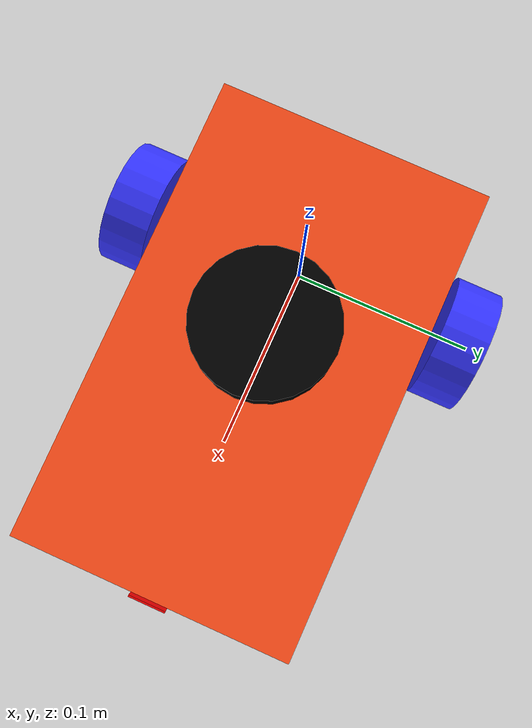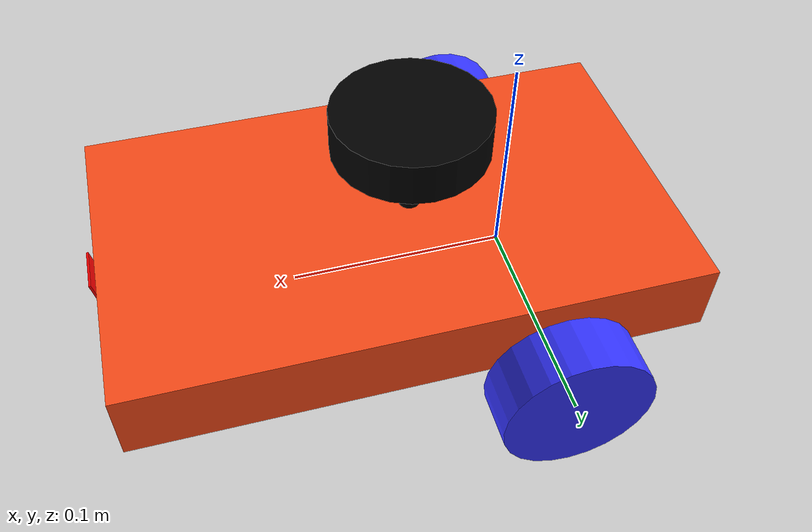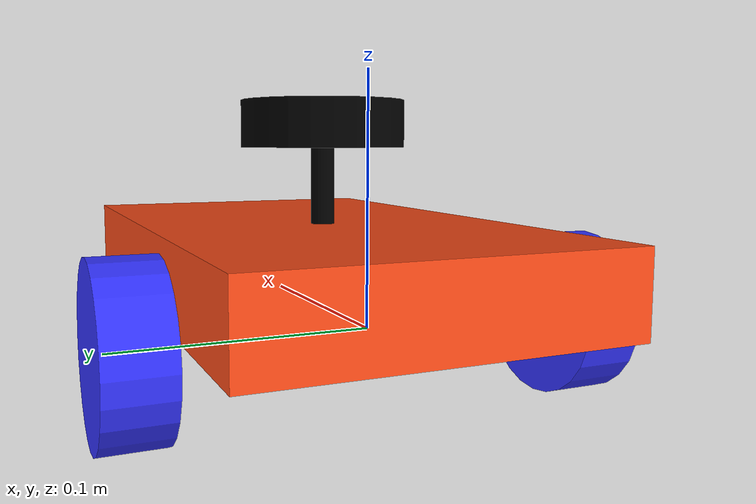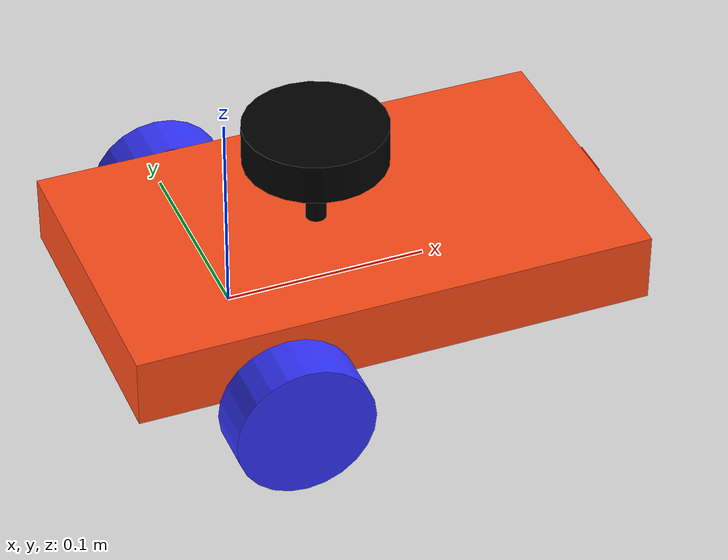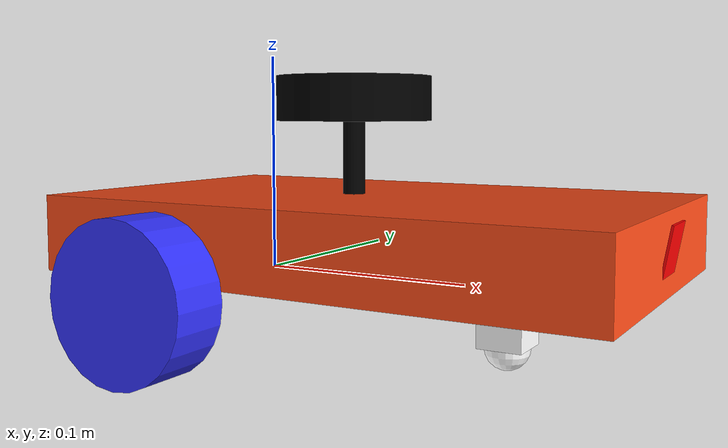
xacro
<?xml version="1.0"?>
<robot xmlns:xacro="http://www.ros.org/wiki/xacro" name="robot">
    <xacro:arg name="use_ros2_control" default="true"/>
    <xacro:arg name="sim_mode" default="false"/>

    <xacro:include filename="robot_core.xacro" />

    <xacro:if value="$(arg use_ros2_control)">
        <xacro:include filename="ros2_control.xacro" />
    </xacro:if>
    <xacro:unless value="$(arg use_ros2_control)">
        <xacro:include filename="gazebo_control.xacro" />
    </xacro:unless>

    <xacro:include filename="lidar.xacro"/>
    <xacro:include filename="camera.xacro"/>
</robot>

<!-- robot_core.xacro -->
<robot xmlns:xacro="http://www.ros.org/wiki/xacro">

    <xacro:include filename="inertial_macros.xacro"/>

    <xacro:property name="chassis_length" value="0.255"/>
    <xacro:property name="chassis_width" value="0.15"/>
    <xacro:property name="chassis_height" value="0.034"/>
    <xacro:property name="chassis_mass" value="1.0"/>
    <xacro:property name="wheel_radius" value="0.0339"/>
    <xacro:property name="wheel_thickness" value="0.025"/>
    <xacro:property name="wheel_mass" value="0.05"/>
    <xacro:property name="wheel_offset_x" value="0.07"/>
    <xacro:property name="wheel_offset_y" value="0.0925"/>
    <xacro:property name="wheel_offset_z" value="0.0031"/>
    <xacro:property name="caster_wheel_radius" value="0.01"/>
    <xacro:property name="caster_wheel_mass" value="0.01"/>
    <xacro:property name="caster_wheel_offset_x" value="0.19"/>
    <xacro:property name="caster_wheel_offset_z" value="${wheel_offset_z + wheel_radius - caster_wheel_radius}"/>

    <material name="white">
        <color rgba="1 1 1 1" />
    </material>

    <material name="orange">
        <color rgba="1 0.3 0.1 1"/>
    </material>

    <material name="blue">
        <color rgba="0.2 0.2 1 1"/>
    </material>

    <material name="black">
        <color rgba="0 0 0 1"/>
    </material>

    <material name="red">
        <color rgba="1 0 0 1"/>
    </material>

    <!-- BASE LINK -->

    <link name="base_link">

    </link>

    <!-- BASE_FOOTPRINT LINK -->

    <joint name="base_footprint_joint" type="fixed">
        <parent link="base_link"/>
        <child link="base_footprint"/>
        <origin xyz="0 0 0" rpy="0 0 0"/>
    </joint>

    <link name="base_footprint">
    </link>

    <!-- CHASSIS LINK -->

    <joint name="chassis_joint" type="fixed">
        <parent link="base_link"/>
        <child link="chassis"/>
        <origin xyz="${-wheel_offset_x} 0 ${wheel_offset_z}"/>
    </joint>

    <link name="chassis">
        <visual>
            <origin xyz="${chassis_length/2} 0 ${chassis_height/2}"/>
            <geometry>
                <box size="${chassis_length} ${chassis_width} ${chassis_height}"/>
            </geometry>
            <material name="orange"/>
        </visual>
        <collision>
            <origin xyz="${chassis_length/2} 0 ${chassis_height/2}"/>
            <geometry>
                <box size="${chassis_length} ${chassis_width} ${chassis_height}"/>
            </geometry>
        </collision>
        <xacro:inertial_box mass="0.5" x="${chassis_length}" y="${chassis_width}" z="${chassis_height}">
            <origin xyz="${chassis_length/2} 0 ${chassis_height/2}" rpy="0 0 0"/>
        </xacro:inertial_box>
    </link>

    <gazebo reference="chassis">
        <material>Gazebo/Orange</material>
    </gazebo>

    <!-- LEFT WHEEL JOINT -->

    <joint name="left_wheel_joint" type="continuous">
        <parent link="base_link"/>
        <child link="left_wheel"/>
        <origin xyz="0 ${wheel_offset_y} 0" rpy="-${pi/2} 0 0" />
        <axis xyz="0 0 1"/>
    </joint>

    <link name="left_wheel">
        <visual>
            <geometry>
                <cylinder radius="${wheel_radius}" length="${wheel_thickness}"/>
            </geometry>
            <material name="blue"/>
        </visual>
        <collision>
            <geometry>
                <sphere radius="${wheel_radius}"/>
            </geometry>
        </collision>
        <xacro:inertial_cylinder mass="${wheel_mass}" length="${wheel_thickness}" radius="${wheel_radius}">
            <origin xyz="0 0 0" rpy="0 0 0"/>
        </xacro:inertial_cylinder>
    </link>

    <gazebo reference="left_wheel">
        <material>Gazebo/Blue</material>
    </gazebo>

    <!-- RIGHT WHEEL JOINT -->

    <joint name="right_wheel_joint" type="continuous">
        <parent link="base_link"/>
        <child link="right_wheel"/>
        <origin xyz="0 ${-wheel_offset_y} 0" rpy="${pi/2} 0 0" />
        <axis xyz="0 0 -1"/>
    </joint>

    <link name="right_wheel">
        <visual>
            <geometry>
                <cylinder radius="${wheel_radius}" length="${wheel_thickness}"/>
            </geometry>
            <material name="blue"/>
        </visual>
        <collision>
            <geometry>
                <sphere radius="${wheel_radius}"/>
            </geometry>
        </collision>
        <xacro:inertial_cylinder mass="${wheel_mass}" length="${wheel_thickness}" radius="${wheel_radius}">
            <origin xyz="0 0 0" rpy="0 0 0"/>
        </xacro:inertial_cylinder>
    </link>

    <gazebo reference="right_wheel">
        <material>Gazebo/Blue</material>
    </gazebo>

    <!-- CASTER WHEEL JOINT -->

    <joint name="caster_wheel_base_joint" type="fixed">
        <parent link="chassis"/>
        <child link="caster_wheel_base"/>
        <origin xyz="${caster_wheel_offset_x} 0 ${-caster_wheel_offset_z/2}"/>
    </joint>

    <link name="caster_wheel_base">
        <visual>
            <geometry>
                <box size="${caster_wheel_radius*2} ${caster_wheel_radius*2} ${caster_wheel_offset_z}"/>
            </geometry>
            <material name="white"/>
        </visual>
        <collision>
            <geometry>
                <box size="${caster_wheel_radius*2} ${caster_wheel_radius*2} ${caster_wheel_offset_z}"/>
            </geometry>
        </collision>
        <xacro:inertial_box mass="0.01" x="${caster_wheel_radius*2}" y="${caster_wheel_radius*2}" z="${caster_wheel_offset_z}">
            <origin xyz="${caster_wheel_radius/2} 0 ${caster_wheel_offset_z/2}" rpy="0 0 0"/>
        </xacro:inertial_box>
    </link>

    <joint name="caster_wheel_joint" type="fixed">
        <parent link="chassis"/>
        <child link="caster_wheel"/>
        <origin xyz="${caster_wheel_offset_x} 0 ${-caster_wheel_offset_z}"/>
    </joint>

    <link name="caster_wheel">
        <visual>
            <geometry>
                <sphere radius="${caster_wheel_radius}"/>
            </geometry>
            <material name="white"/>
        </visual>
        <collision>
            <geometry>
                <sphere radius="${caster_wheel_radius}"/>
            </geometry>
        </collision>
        <xacro:inertial_sphere mass="${caster_wheel_mass}" radius="${caster_wheel_radius}">
            <origin xyz="0 0 0" rpy="0 0 0"/>
        </xacro:inertial_sphere>
    </link>

    <gazebo reference="caster_wheel">
        <material>Gazebo/White</material>
        <mu1 value="0.001"/>
        <mu2 value="0.001"/>
    </gazebo>
</robot>

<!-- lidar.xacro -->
<robot xmlns:xacro="http://www.ros.org/wiki/xacro">

  <xacro:property name="laser_offset_x" value="0.115"/>
  <xacro:property name="laser_offset_z" value="0.002"/><!-- 0.2cm = 0.002-->
  <xacro:property name="laser_radius" value="0.035"/>
  <xacro:property name="laser_thickness" value="0.02"/>
  <xacro:property name="laser_base_height" value="0.035"/>

  <joint name="laser_joint" type="fixed">
    <parent link="chassis" />
    <child link="laser_frame" />
    <origin xyz="${laser_offset_x} 0 ${chassis_height+laser_base_height+laser_thickness/2}" rpy="0 0 0" />
  </joint>

  <link name="laser_frame">
    <visual>
      <origin xyz="0 0 ${-laser_offset_z}" rpy="0 0 0" />
      <geometry>
        <cylinder radius="${laser_radius}" length="${laser_thickness}"/>
      </geometry>
      <material name="black"/>
    </visual>
    <visual>
      <origin xyz="0 0 ${-laser_offset_z-laser_thickness/2-laser_base_height/2}" rpy="0 0 0" />
      <geometry>
        <cylinder radius="${0.005}" length="${laser_base_height}"/>
      </geometry>
      <material name="black"/>
    </visual>
    <collision>
      <geometry>
        <cylinder radius="${laser_radius}" length="${laser_thickness}"/>
      </geometry>
    </collision>
    <xacro:inertial_cylinder mass="0.2" radius="${laser_radius}" length="${laser_thickness}">
      <origin xyz="0 0 0" rpy="0 0 0"/>
    </xacro:inertial_cylinder>
  </link>
  <gazebo reference="laser_frame">
    <material>Gazebo/Black</material>

    <sensor name="laser" type="ray">
      <pose> 0 0 0 0 0 0 </pose>
      <visualize>false</visualize>
      <update_rate>10</update_rate>
      <ray>
        <scan>
          <horizontal>
            <samples>360</samples>
            <resolution>1</resolution>
            <min_angle>-3.14</min_angle>
            <max_angle>3.14</max_angle>
          </horizontal>
        </scan>
        <range>
          <min>0.3</min>
          <max>12</max>
          <resolution>0.01</resolution>
        </range>
      </ray>
      <plugin name="laser_controller" filename="libgazebo_ros_ray_sensor.so">
        <ros>
          <argument>~/out:=scan</argument>
        </ros>
        <output_type>sensor_msgs/LaserScan</output_type>
        <frame_name>laser_frame</frame_name>
      </plugin>
    </sensor>
  </gazebo>
</robot>

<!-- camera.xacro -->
<robot xmlns:xacro="http://www.ros.org/wiki/xacro" >

    <xacro:property name="camera_length" value="0.001"/>
    <xacro:property name="camera_width" value="0.020"/>
    <xacro:property name="camera_height" value="0.025"/>

    <joint name="camera_joint" type="fixed">
        <parent link="chassis"/>
        <child link="camera_link"/>
        <origin xyz="${chassis_length+camera_length} 0 ${chassis_height/2}" rpy="0 0.18 0"/>
    </joint>

    <link name="camera_link">
        <visual>
            <geometry>
                <box size="${camera_length} ${camera_width} ${camera_height}"/>
            </geometry>
            <material name="red"/>
        </visual>
    </link>

    <joint name="camera_optical_joint" type="fixed">
        <parent link="camera_link"/>
        <child link="camera_link_optical"/>
        <origin xyz="0 0 0" rpy="${-pi/2} 0 ${-pi/2}"/>
    </joint>

    <link name="camera_link_optical"></link>

    <gazebo reference="camera_link">
        <material>Gazebo/Red</material>

        <sensor name="camera" type="camera">
            <pose> 0 0 0 0 0 0 </pose>
            <visualize>true</visualize>
            <update_rate>10</update_rate>
            <camera>
                <horizontal_fov>1.089</horizontal_fov>
                <image>
                    <format>R8G8B8</format>
                    <width>640</width>
                    <height>480</height>
                </image>
                <clip>
                    <near>0.05</near>
                    <far>8.0</far>
                </clip>
            </camera>
            <plugin name="camera_controller" filename="libgazebo_ros_camera.so">
                <frame_name>camera_link_optical</frame_name>
            </plugin>
        </sensor>
    </gazebo>

</robot>
